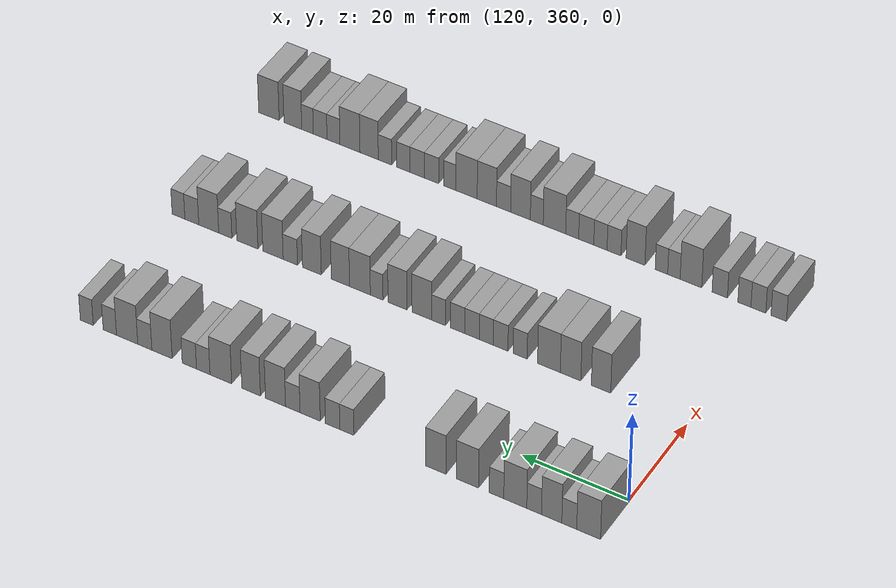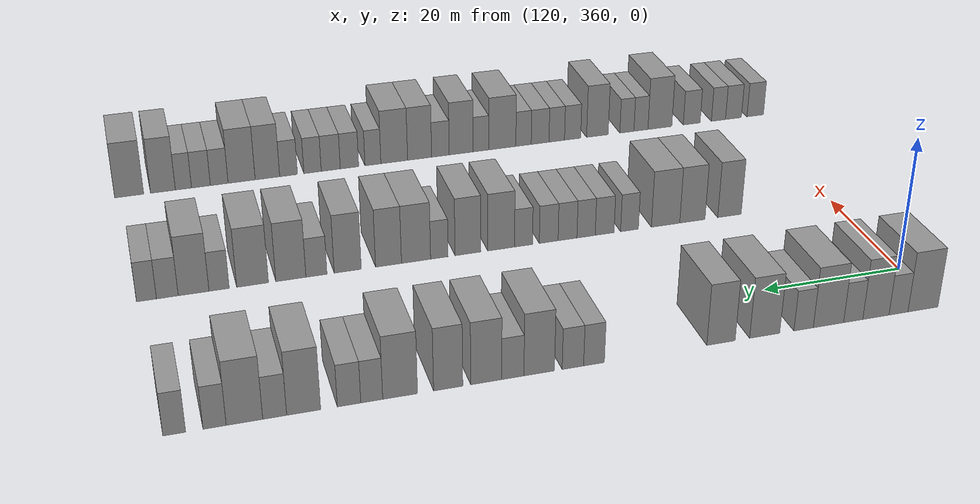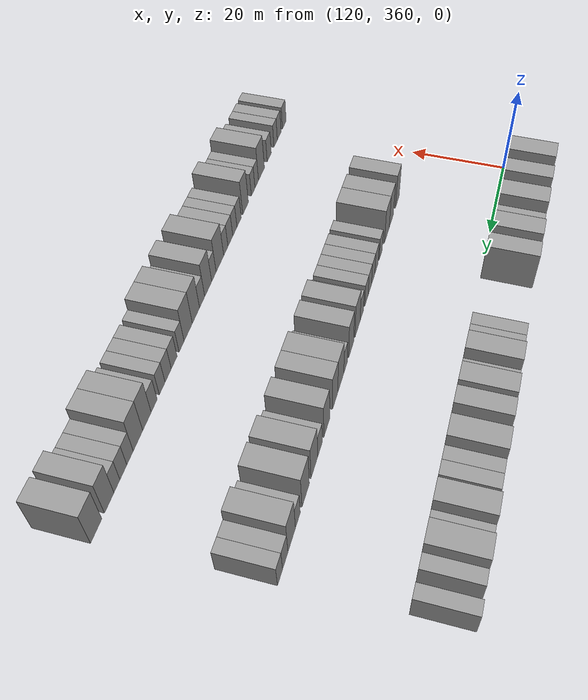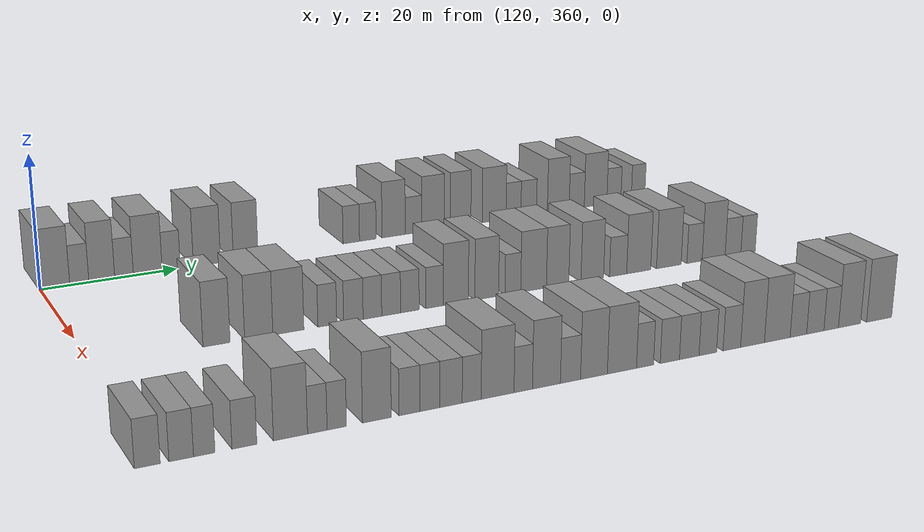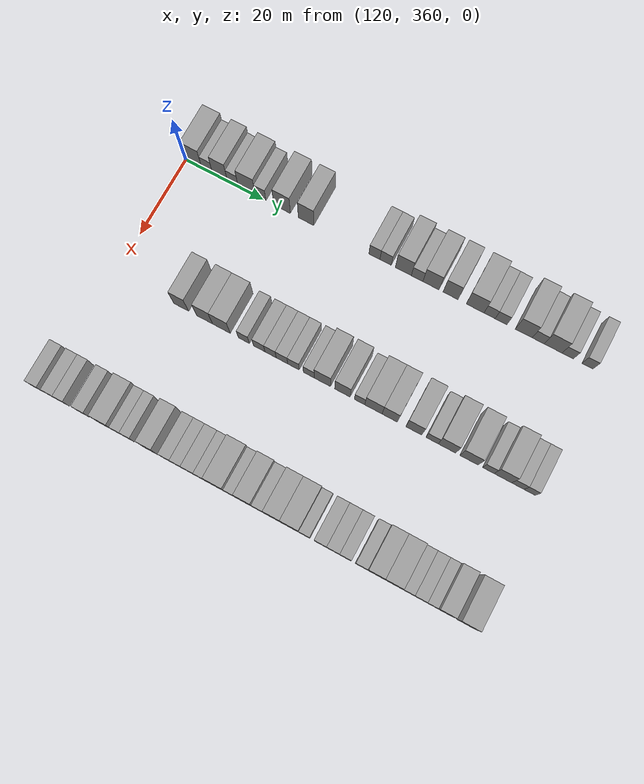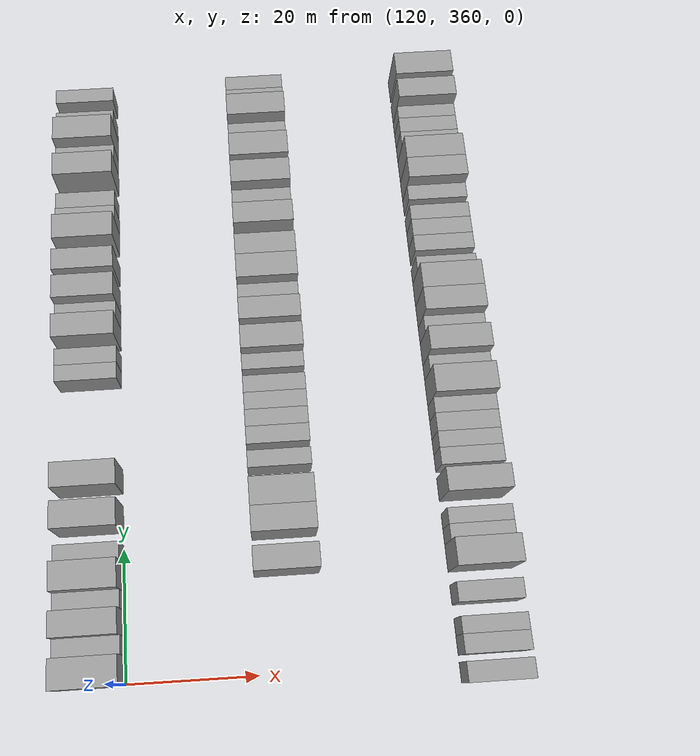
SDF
<sdf version="1.6">
 <world name="default">
  <model name="building_871">
   <static>1</static>
   <pose>115.0000 361.9987 0 0.000000 0.000000 0.000000</pose>
   <link name="link">
    <pose>0 0 4.50 0 0 0</pose>
    <collision name="collision"><geometry><box><size>10.0000 4.3998 9.0000</size></box></geometry></collision>
    <visual name="visual">
     <cast_shadows>0</cast_shadows>
     <geometry><box><size>10.0000 4.3998 9.0000</size></box></geometry>
     <material>
      <script>
       <uri>model://grey_wall/materials/scripts</uri>
       <uri>model://grey_wall/materials/textures</uri>
       <name>vrc/grey_wall</name>
      </script>
     </material>
    </visual>
   </link>
  </model>
  <model name="building_872">
   <static>1</static>
   <pose>115.0000 365.5794 0 0.000000 0.000000 0.000000</pose>
   <link name="link">
    <pose>0 0 3.00 0 0 0</pose>
    <collision name="collision"><geometry><box><size>10.0000 2.7616 6.0000</size></box></geometry></collision>
    <visual name="visual">
     <cast_shadows>0</cast_shadows>
     <geometry><box><size>10.0000 2.7616 6.0000</size></box></geometry>
     <material>
      <script>
       <uri>model://grey_wall/materials/scripts</uri>
       <uri>model://grey_wall/materials/textures</uri>
       <name>vrc/grey_wall</name>
      </script>
     </material>
    </visual>
   </link>
  </model>
  <model name="building_873">
   <static>1</static>
   <pose>115.0000 368.8501 0 0.000000 0.000000 0.000000</pose>
   <link name="link">
    <pose>0 0 4.50 0 0 0</pose>
    <collision name="collision"><geometry><box><size>10.0000 3.7798 9.0000</size></box></geometry></collision>
    <visual name="visual">
     <cast_shadows>0</cast_shadows>
     <geometry><box><size>10.0000 3.7798 9.0000</size></box></geometry>
     <material>
      <script>
       <uri>model://grey_wall/materials/scripts</uri>
       <uri>model://grey_wall/materials/textures</uri>
       <name>vrc/grey_wall</name>
      </script>
     </material>
    </visual>
   </link>
  </model>
  <model name="building_874">
   <static>1</static>
   <pose>115.0000 372.1155 0 0.000000 0.000000 0.000000</pose>
   <link name="link">
    <pose>0 0 3.00 0 0 0</pose>
    <collision name="collision"><geometry><box><size>10.0000 2.7510 6.0000</size></box></geometry></collision>
    <visual name="visual">
     <cast_shadows>0</cast_shadows>
     <geometry><box><size>10.0000 2.7510 6.0000</size></box></geometry>
     <material>
      <script>
       <uri>model://grey_wall/materials/scripts</uri>
       <uri>model://grey_wall/materials/textures</uri>
       <name>vrc/grey_wall</name>
      </script>
     </material>
    </visual>
   </link>
  </model>
  <model name="building_875">
   <static>1</static>
   <pose>115.0000 375.6452 0 0.000000 0.000000 0.000000</pose>
   <link name="link">
    <pose>0 0 4.50 0 0 0</pose>
    <collision name="collision"><geometry><box><size>10.0000 4.3083 9.0000</size></box></geometry></collision>
    <visual name="visual">
     <cast_shadows>0</cast_shadows>
     <geometry><box><size>10.0000 4.3083 9.0000</size></box></geometry>
     <material>
      <script>
       <uri>model://grey_wall/materials/scripts</uri>
       <uri>model://grey_wall/materials/textures</uri>
       <name>vrc/grey_wall</name>
      </script>
     </material>
    </visual>
   </link>
  </model>
  <model name="building_876">
   <static>1</static>
   <pose>115.0000 379.1656 0 0.000000 0.000000 0.000000</pose>
   <link name="link">
    <pose>0 0 3.00 0 0 0</pose>
    <collision name="collision"><geometry><box><size>10.0000 2.7325 6.0000</size></box></geometry></collision>
    <visual name="visual">
     <cast_shadows>0</cast_shadows>
     <geometry><box><size>10.0000 2.7325 6.0000</size></box></geometry>
     <material>
      <script>
       <uri>model://grey_wall/materials/scripts</uri>
       <uri>model://grey_wall/materials/textures</uri>
       <name>vrc/grey_wall</name>
      </script>
     </material>
    </visual>
   </link>
  </model>
  <model name="building_877">
   <static>1</static>
   <pose>115.0000 384.6185 0 0.000000 0.000000 0.000000</pose>
   <link name="link">
    <pose>0 0 4.50 0 0 0</pose>
    <collision name="collision"><geometry><box><size>10.0000 4.1733 9.0000</size></box></geometry></collision>
    <visual name="visual">
     <cast_shadows>0</cast_shadows>
     <geometry><box><size>10.0000 4.1733 9.0000</size></box></geometry>
     <material>
      <script>
       <uri>model://grey_wall/materials/scripts</uri>
       <uri>model://grey_wall/materials/textures</uri>
       <name>vrc/grey_wall</name>
      </script>
     </material>
    </visual>
   </link>
  </model>
  <model name="building_878">
   <static>1</static>
   <pose>115.0000 390.6435 0 0.000000 0.000000 0.000000</pose>
   <link name="link">
    <pose>0 0 4.50 0 0 0</pose>
    <collision name="collision"><geometry><box><size>10.0000 3.8768 9.0000</size></box></geometry></collision>
    <visual name="visual">
     <cast_shadows>0</cast_shadows>
     <geometry><box><size>10.0000 3.8768 9.0000</size></box></geometry>
     <material>
      <script>
       <uri>model://grey_wall/materials/scripts</uri>
       <uri>model://grey_wall/materials/textures</uri>
       <name>vrc/grey_wall</name>
      </script>
     </material>
    </visual>
   </link>
  </model>
  <model name="building_879">
   <static>1</static>
   <pose>115.0000 407.6652 0 0.000000 0.000000 0.000000</pose>
   <link name="link">
    <pose>0 0 3.00 0 0 0</pose>
    <collision name="collision"><geometry><box><size>10.0000 2.7222 6.0000</size></box></geometry></collision>
    <visual name="visual">
     <cast_shadows>0</cast_shadows>
     <geometry><box><size>10.0000 2.7222 6.0000</size></box></geometry>
     <material>
      <script>
       <uri>model://grey_wall/materials/scripts</uri>
       <uri>model://grey_wall/materials/textures</uri>
       <name>vrc/grey_wall</name>
      </script>
     </material>
    </visual>
   </link>
  </model>
  <model name="building_880">
   <static>1</static>
   <pose>115.0000 410.4216 0 0.000000 0.000000 0.000000</pose>
   <link name="link">
    <pose>0 0 3.00 0 0 0</pose>
    <collision name="collision"><geometry><box><size>10.0000 2.7905 6.0000</size></box></geometry></collision>
    <visual name="visual">
     <cast_shadows>0</cast_shadows>
     <geometry><box><size>10.0000 2.7905 6.0000</size></box></geometry>
     <material>
      <script>
       <uri>model://grey_wall/materials/scripts</uri>
       <uri>model://grey_wall/materials/textures</uri>
       <name>vrc/grey_wall</name>
      </script>
     </material>
    </visual>
   </link>
  </model>
  <model name="building_881">
   <static>1</static>
   <pose>115.0000 414.7831 0 0.000000 0.000000 0.000000</pose>
   <link name="link">
    <pose>0 0 4.50 0 0 0</pose>
    <collision name="collision"><geometry><box><size>10.0000 3.9324 9.0000</size></box></geometry></collision>
    <visual name="visual">
     <cast_shadows>0</cast_shadows>
     <geometry><box><size>10.0000 3.9324 9.0000</size></box></geometry>
     <material>
      <script>
       <uri>model://grey_wall/materials/scripts</uri>
       <uri>model://grey_wall/materials/textures</uri>
       <name>vrc/grey_wall</name>
      </script>
     </material>
    </visual>
   </link>
  </model>
  <model name="building_882">
   <static>1</static>
   <pose>115.0000 418.1613 0 0.000000 0.000000 0.000000</pose>
   <link name="link">
    <pose>0 0 3.00 0 0 0</pose>
    <collision name="collision"><geometry><box><size>10.0000 2.8240 6.0000</size></box></geometry></collision>
    <visual name="visual">
     <cast_shadows>0</cast_shadows>
     <geometry><box><size>10.0000 2.8240 6.0000</size></box></geometry>
     <material>
      <script>
       <uri>model://grey_wall/materials/scripts</uri>
       <uri>model://grey_wall/materials/textures</uri>
       <name>vrc/grey_wall</name>
      </script>
     </material>
    </visual>
   </link>
  </model>
  <model name="building_883">
   <static>1</static>
   <pose>115.0000 421.5358 0 0.000000 0.000000 0.000000</pose>
   <link name="link">
    <pose>0 0 4.50 0 0 0</pose>
    <collision name="collision"><geometry><box><size>10.0000 3.9251 9.0000</size></box></geometry></collision>
    <visual name="visual">
     <cast_shadows>0</cast_shadows>
     <geometry><box><size>10.0000 3.9251 9.0000</size></box></geometry>
     <material>
      <script>
       <uri>model://grey_wall/materials/scripts</uri>
       <uri>model://grey_wall/materials/textures</uri>
       <name>vrc/grey_wall</name>
      </script>
     </material>
    </visual>
   </link>
  </model>
  <model name="building_884">
   <static>1</static>
   <pose>115.0000 426.3222 0 0.000000 0.000000 0.000000</pose>
   <link name="link">
    <pose>0 0 4.50 0 0 0</pose>
    <collision name="collision"><geometry><box><size>10.0000 3.6477 9.0000</size></box></geometry></collision>
    <visual name="visual">
     <cast_shadows>0</cast_shadows>
     <geometry><box><size>10.0000 3.6477 9.0000</size></box></geometry>
     <material>
      <script>
       <uri>model://grey_wall/materials/scripts</uri>
       <uri>model://grey_wall/materials/textures</uri>
       <name>vrc/grey_wall</name>
      </script>
     </material>
    </visual>
   </link>
  </model>
  <model name="building_885">
   <static>1</static>
   <pose>115.0000 432.2848 0 0.000000 0.000000 0.000000</pose>
   <link name="link">
    <pose>0 0 4.50 0 0 0</pose>
    <collision name="collision"><geometry><box><size>10.0000 4.2775 9.0000</size></box></geometry></collision>
    <visual name="visual">
     <cast_shadows>0</cast_shadows>
     <geometry><box><size>10.0000 4.2775 9.0000</size></box></geometry>
     <material>
      <script>
       <uri>model://grey_wall/materials/scripts</uri>
       <uri>model://grey_wall/materials/textures</uri>
       <name>vrc/grey_wall</name>
      </script>
     </material>
    </visual>
   </link>
  </model>
  <model name="building_886">
   <static>1</static>
   <pose>115.0000 435.7615 0 0.000000 0.000000 0.000000</pose>
   <link name="link">
    <pose>0 0 3.00 0 0 0</pose>
    <collision name="collision"><geometry><box><size>10.0000 2.6759 6.0000</size></box></geometry></collision>
    <visual name="visual">
     <cast_shadows>0</cast_shadows>
     <geometry><box><size>10.0000 2.6759 6.0000</size></box></geometry>
     <material>
      <script>
       <uri>model://grey_wall/materials/scripts</uri>
       <uri>model://grey_wall/materials/textures</uri>
       <name>vrc/grey_wall</name>
      </script>
     </material>
    </visual>
   </link>
  </model>
  <model name="building_887">
   <static>1</static>
   <pose>115.0000 438.5187 0 0.000000 0.000000 0.000000</pose>
   <link name="link">
    <pose>0 0 3.00 0 0 0</pose>
    <collision name="collision"><geometry><box><size>10.0000 2.8385 6.0000</size></box></geometry></collision>
    <visual name="visual">
     <cast_shadows>0</cast_shadows>
     <geometry><box><size>10.0000 2.8385 6.0000</size></box></geometry>
     <material>
      <script>
       <uri>model://grey_wall/materials/scripts</uri>
       <uri>model://grey_wall/materials/textures</uri>
       <name>vrc/grey_wall</name>
      </script>
     </material>
    </visual>
   </link>
  </model>
  <model name="building_888">
   <static>1</static>
   <pose>115.0000 443.9630 0 0.000000 0.000000 0.000000</pose>
   <link name="link">
    <pose>0 0 4.50 0 0 0</pose>
    <collision name="collision"><geometry><box><size>10.0000 4.0502 9.0000</size></box></geometry></collision>
    <visual name="visual">
     <cast_shadows>0</cast_shadows>
     <geometry><box><size>10.0000 4.0502 9.0000</size></box></geometry>
     <material>
      <script>
       <uri>model://grey_wall/materials/scripts</uri>
       <uri>model://grey_wall/materials/textures</uri>
       <name>vrc/grey_wall</name>
      </script>
     </material>
    </visual>
   </link>
  </model>
  <model name="building_889">
   <static>1</static>
   <pose>115.0000 447.4037 0 0.000000 0.000000 0.000000</pose>
   <link name="link">
    <pose>0 0 3.00 0 0 0</pose>
    <collision name="collision"><geometry><box><size>10.0000 2.8311 6.0000</size></box></geometry></collision>
    <visual name="visual">
     <cast_shadows>0</cast_shadows>
     <geometry><box><size>10.0000 2.8311 6.0000</size></box></geometry>
     <material>
      <script>
       <uri>model://grey_wall/materials/scripts</uri>
       <uri>model://grey_wall/materials/textures</uri>
       <name>vrc/grey_wall</name>
      </script>
     </material>
    </visual>
   </link>
  </model>
  <model name="building_890">
   <static>1</static>
   <pose>115.0000 450.9556 0 0.000000 0.000000 0.000000</pose>
   <link name="link">
    <pose>0 0 4.50 0 0 0</pose>
    <collision name="collision"><geometry><box><size>10.0000 4.2727 9.0000</size></box></geometry></collision>
    <visual name="visual">
     <cast_shadows>0</cast_shadows>
     <geometry><box><size>10.0000 4.2727 9.0000</size></box></geometry>
     <material>
      <script>
       <uri>model://grey_wall/materials/scripts</uri>
       <uri>model://grey_wall/materials/textures</uri>
       <name>vrc/grey_wall</name>
      </script>
     </material>
    </visual>
   </link>
  </model>
  <model name="building_891">
   <static>1</static>
   <pose>115.0000 454.4366 0 0.000000 0.000000 0.000000</pose>
   <link name="link">
    <pose>0 0 3.00 0 0 0</pose>
    <collision name="collision"><geometry><box><size>10.0000 2.6893 6.0000</size></box></geometry></collision>
    <visual name="visual">
     <cast_shadows>0</cast_shadows>
     <geometry><box><size>10.0000 2.6893 6.0000</size></box></geometry>
     <material>
      <script>
       <uri>model://grey_wall/materials/scripts</uri>
       <uri>model://grey_wall/materials/textures</uri>
       <name>vrc/grey_wall</name>
      </script>
     </material>
    </visual>
   </link>
  </model>
  <model name="building_892">
   <static>1</static>
   <pose>115.0000 459.0893 0 0.000000 0.000000 0.000000</pose>
   <link name="link">
    <pose>0 0 3.00 0 0 0</pose>
    <collision name="collision"><geometry><box><size>10.0000 2.6162 6.0000</size></box></geometry></collision>
    <visual name="visual">
     <cast_shadows>0</cast_shadows>
     <geometry><box><size>10.0000 2.6162 6.0000</size></box></geometry>
     <material>
      <script>
       <uri>model://grey_wall/materials/scripts</uri>
       <uri>model://grey_wall/materials/textures</uri>
       <name>vrc/grey_wall</name>
      </script>
     </material>
    </visual>
   </link>
  </model>
  <model name="building_1096">
   <static>1</static>
   <pose>145.0000 376.3088 0 0.000000 0.000000 0.000000</pose>
   <link name="link">
    <pose>0 0 4.50 0 0 0</pose>
    <collision name="collision"><geometry><box><size>10.0000 3.6912 9.0000</size></box></geometry></collision>
    <visual name="visual">
     <cast_shadows>0</cast_shadows>
     <geometry><box><size>10.0000 3.6912 9.0000</size></box></geometry>
     <material>
      <script>
       <uri>model://grey_wall/materials/scripts</uri>
       <uri>model://grey_wall/materials/textures</uri>
       <name>vrc/grey_wall</name>
      </script>
     </material>
    </visual>
   </link>
  </model>
  <model name="building_1097">
   <static>1</static>
   <pose>145.0000 382.1188 0 0.000000 0.000000 0.000000</pose>
   <link name="link">
    <pose>0 0 4.50 0 0 0</pose>
    <collision name="collision"><geometry><box><size>10.0000 3.9289 9.0000</size></box></geometry></collision>
    <visual name="visual">
     <cast_shadows>0</cast_shadows>
     <geometry><box><size>10.0000 3.9289 9.0000</size></box></geometry>
     <material>
      <script>
       <uri>model://grey_wall/materials/scripts</uri>
       <uri>model://grey_wall/materials/textures</uri>
       <name>vrc/grey_wall</name>
      </script>
     </material>
    </visual>
   </link>
  </model>
  <model name="building_1098">
   <static>1</static>
   <pose>145.0000 386.2729 0 0.000000 0.000000 0.000000</pose>
   <link name="link">
    <pose>0 0 4.50 0 0 0</pose>
    <collision name="collision"><geometry><box><size>10.0000 4.3792 9.0000</size></box></geometry></collision>
    <visual name="visual">
     <cast_shadows>0</cast_shadows>
     <geometry><box><size>10.0000 4.3792 9.0000</size></box></geometry>
     <material>
      <script>
       <uri>model://grey_wall/materials/scripts</uri>
       <uri>model://grey_wall/materials/textures</uri>
       <name>vrc/grey_wall</name>
      </script>
     </material>
    </visual>
   </link>
  </model>
  <model name="building_1099">
   <static>1</static>
   <pose>145.0000 391.8205 0 0.000000 0.000000 0.000000</pose>
   <link name="link">
    <pose>0 0 3.00 0 0 0</pose>
    <collision name="collision"><geometry><box><size>10.0000 2.7160 6.0000</size></box></geometry></collision>
    <visual name="visual">
     <cast_shadows>0</cast_shadows>
     <geometry><box><size>10.0000 2.7160 6.0000</size></box></geometry>
     <material>
      <script>
       <uri>model://grey_wall/materials/scripts</uri>
       <uri>model://grey_wall/materials/textures</uri>
       <name>vrc/grey_wall</name>
      </script>
     </material>
    </visual>
   </link>
  </model>
  <model name="building_1100">
   <static>1</static>
   <pose>145.0000 395.5969 0 0.000000 0.000000 0.000000</pose>
   <link name="link">
    <pose>0 0 3.00 0 0 0</pose>
    <collision name="collision"><geometry><box><size>10.0000 2.8369 6.0000</size></box></geometry></collision>
    <visual name="visual">
     <cast_shadows>0</cast_shadows>
     <geometry><box><size>10.0000 2.8369 6.0000</size></box></geometry>
     <material>
      <script>
       <uri>model://grey_wall/materials/scripts</uri>
       <uri>model://grey_wall/materials/textures</uri>
       <name>vrc/grey_wall</name>
      </script>
     </material>
    </visual>
   </link>
  </model>
  <model name="building_1101">
   <static>1</static>
   <pose>145.0000 398.3902 0 0.000000 0.000000 0.000000</pose>
   <link name="link">
    <pose>0 0 3.00 0 0 0</pose>
    <collision name="collision"><geometry><box><size>10.0000 2.7495 6.0000</size></box></geometry></collision>
    <visual name="visual">
     <cast_shadows>0</cast_shadows>
     <geometry><box><size>10.0000 2.7495 6.0000</size></box></geometry>
     <material>
      <script>
       <uri>model://grey_wall/materials/scripts</uri>
       <uri>model://grey_wall/materials/textures</uri>
       <name>vrc/grey_wall</name>
      </script>
     </material>
    </visual>
   </link>
  </model>
  <model name="building_1102">
   <static>1</static>
   <pose>145.0000 401.1715 0 0.000000 0.000000 0.000000</pose>
   <link name="link">
    <pose>0 0 3.00 0 0 0</pose>
    <collision name="collision"><geometry><box><size>10.0000 2.8131 6.0000</size></box></geometry></collision>
    <visual name="visual">
     <cast_shadows>0</cast_shadows>
     <geometry><box><size>10.0000 2.8131 6.0000</size></box></geometry>
     <material>
      <script>
       <uri>model://grey_wall/materials/scripts</uri>
       <uri>model://grey_wall/materials/textures</uri>
       <name>vrc/grey_wall</name>
      </script>
     </material>
    </visual>
   </link>
  </model>
  <model name="building_1103">
   <static>1</static>
   <pose>145.0000 403.9708 0 0.000000 0.000000 0.000000</pose>
   <link name="link">
    <pose>0 0 3.00 0 0 0</pose>
    <collision name="collision"><geometry><box><size>10.0000 2.7855 6.0000</size></box></geometry></collision>
    <visual name="visual">
     <cast_shadows>0</cast_shadows>
     <geometry><box><size>10.0000 2.7855 6.0000</size></box></geometry>
     <material>
      <script>
       <uri>model://grey_wall/materials/scripts</uri>
       <uri>model://grey_wall/materials/textures</uri>
       <name>vrc/grey_wall</name>
      </script>
     </material>
    </visual>
   </link>
  </model>
  <model name="building_1104">
   <static>1</static>
   <pose>145.0000 407.6880 0 0.000000 0.000000 0.000000</pose>
   <link name="link">
    <pose>0 0 3.00 0 0 0</pose>
    <collision name="collision"><geometry><box><size>10.0000 2.6490 6.0000</size></box></geometry></collision>
    <visual name="visual">
     <cast_shadows>0</cast_shadows>
     <geometry><box><size>10.0000 2.6490 6.0000</size></box></geometry>
     <material>
      <script>
       <uri>model://grey_wall/materials/scripts</uri>
       <uri>model://grey_wall/materials/textures</uri>
       <name>vrc/grey_wall</name>
      </script>
     </material>
    </visual>
   </link>
  </model>
  <model name="building_1105">
   <static>1</static>
   <pose>145.0000 410.9677 0 0.000000 0.000000 0.000000</pose>
   <link name="link">
    <pose>0 0 4.50 0 0 0</pose>
    <collision name="collision"><geometry><box><size>10.0000 3.9104 9.0000</size></box></geometry></collision>
    <visual name="visual">
     <cast_shadows>0</cast_shadows>
     <geometry><box><size>10.0000 3.9104 9.0000</size></box></geometry>
     <material>
      <script>
       <uri>model://grey_wall/materials/scripts</uri>
       <uri>model://grey_wall/materials/textures</uri>
       <name>vrc/grey_wall</name>
      </script>
     </material>
    </visual>
   </link>
  </model>
  <model name="building_1106">
   <static>1</static>
   <pose>145.0000 415.7907 0 0.000000 0.000000 0.000000</pose>
   <link name="link">
    <pose>0 0 4.50 0 0 0</pose>
    <collision name="collision"><geometry><box><size>10.0000 3.7355 9.0000</size></box></geometry></collision>
    <visual name="visual">
     <cast_shadows>0</cast_shadows>
     <geometry><box><size>10.0000 3.7355 9.0000</size></box></geometry>
     <material>
      <script>
       <uri>model://grey_wall/materials/scripts</uri>
       <uri>model://grey_wall/materials/textures</uri>
       <name>vrc/grey_wall</name>
      </script>
     </material>
    </visual>
   </link>
  </model>
  <model name="building_1107">
   <static>1</static>
   <pose>145.0000 419.9105 0 0.000000 0.000000 0.000000</pose>
   <link name="link">
    <pose>0 0 3.00 0 0 0</pose>
    <collision name="collision"><geometry><box><size>10.0000 2.5041 6.0000</size></box></geometry></collision>
    <visual name="visual">
     <cast_shadows>0</cast_shadows>
     <geometry><box><size>10.0000 2.5041 6.0000</size></box></geometry>
     <material>
      <script>
       <uri>model://grey_wall/materials/scripts</uri>
       <uri>model://grey_wall/materials/textures</uri>
       <name>vrc/grey_wall</name>
      </script>
     </material>
    </visual>
   </link>
  </model>
  <model name="building_1108">
   <static>1</static>
   <pose>145.0000 423.2298 0 0.000000 0.000000 0.000000</pose>
   <link name="link">
    <pose>0 0 4.50 0 0 0</pose>
    <collision name="collision"><geometry><box><size>10.0000 4.1345 9.0000</size></box></geometry></collision>
    <visual name="visual">
     <cast_shadows>0</cast_shadows>
     <geometry><box><size>10.0000 4.1345 9.0000</size></box></geometry>
     <material>
      <script>
       <uri>model://grey_wall/materials/scripts</uri>
       <uri>model://grey_wall/materials/textures</uri>
       <name>vrc/grey_wall</name>
      </script>
     </material>
    </visual>
   </link>
  </model>
  <model name="building_1109">
   <static>1</static>
   <pose>145.0000 427.1219 0 0.000000 0.000000 0.000000</pose>
   <link name="link">
    <pose>0 0 4.50 0 0 0</pose>
    <collision name="collision"><geometry><box><size>10.0000 3.6497 9.0000</size></box></geometry></collision>
    <visual name="visual">
     <cast_shadows>0</cast_shadows>
     <geometry><box><size>10.0000 3.6497 9.0000</size></box></geometry>
     <material>
      <script>
       <uri>model://grey_wall/materials/scripts</uri>
       <uri>model://grey_wall/materials/textures</uri>
       <name>vrc/grey_wall</name>
      </script>
     </material>
    </visual>
   </link>
  </model>
  <model name="building_1110">
   <static>1</static>
   <pose>145.0000 432.8287 0 0.000000 0.000000 0.000000</pose>
   <link name="link">
    <pose>0 0 4.50 0 0 0</pose>
    <collision name="collision"><geometry><box><size>10.0000 3.7640 9.0000</size></box></geometry></collision>
    <visual name="visual">
     <cast_shadows>0</cast_shadows>
     <geometry><box><size>10.0000 3.7640 9.0000</size></box></geometry>
     <material>
      <script>
       <uri>model://grey_wall/materials/scripts</uri>
       <uri>model://grey_wall/materials/textures</uri>
       <name>vrc/grey_wall</name>
      </script>
     </material>
    </visual>
   </link>
  </model>
  <model name="building_1111">
   <static>1</static>
   <pose>145.0000 437.1565 0 0.000000 0.000000 0.000000</pose>
   <link name="link">
    <pose>0 0 3.00 0 0 0</pose>
    <collision name="collision"><geometry><box><size>10.0000 2.8915 6.0000</size></box></geometry></collision>
    <visual name="visual">
     <cast_shadows>0</cast_shadows>
     <geometry><box><size>10.0000 2.8915 6.0000</size></box></geometry>
     <material>
      <script>
       <uri>model://grey_wall/materials/scripts</uri>
       <uri>model://grey_wall/materials/textures</uri>
       <name>vrc/grey_wall</name>
      </script>
     </material>
    </visual>
   </link>
  </model>
  <model name="building_1112">
   <static>1</static>
   <pose>145.0000 440.6560 0 0.000000 0.000000 0.000000</pose>
   <link name="link">
    <pose>0 0 4.50 0 0 0</pose>
    <collision name="collision"><geometry><box><size>10.0000 4.1076 9.0000</size></box></geometry></collision>
    <visual name="visual">
     <cast_shadows>0</cast_shadows>
     <geometry><box><size>10.0000 4.1076 9.0000</size></box></geometry>
     <material>
      <script>
       <uri>model://grey_wall/materials/scripts</uri>
       <uri>model://grey_wall/materials/textures</uri>
       <name>vrc/grey_wall</name>
      </script>
     </material>
    </visual>
   </link>
  </model>
  <model name="building_1113">
   <static>1</static>
   <pose>145.0000 445.8509 0 0.000000 0.000000 0.000000</pose>
   <link name="link">
    <pose>0 0 4.50 0 0 0</pose>
    <collision name="collision"><geometry><box><size>10.0000 4.2822 9.0000</size></box></geometry></collision>
    <visual name="visual">
     <cast_shadows>0</cast_shadows>
     <geometry><box><size>10.0000 4.2822 9.0000</size></box></geometry>
     <material>
      <script>
       <uri>model://grey_wall/materials/scripts</uri>
       <uri>model://grey_wall/materials/textures</uri>
       <name>vrc/grey_wall</name>
      </script>
     </material>
    </visual>
   </link>
  </model>
  <model name="building_1114">
   <static>1</static>
   <pose>145.0000 450.3405 0 0.000000 0.000000 0.000000</pose>
   <link name="link">
    <pose>0 0 3.00 0 0 0</pose>
    <collision name="collision"><geometry><box><size>10.0000 2.6971 6.0000</size></box></geometry></collision>
    <visual name="visual">
     <cast_shadows>0</cast_shadows>
     <geometry><box><size>10.0000 2.6971 6.0000</size></box></geometry>
     <material>
      <script>
       <uri>model://grey_wall/materials/scripts</uri>
       <uri>model://grey_wall/materials/textures</uri>
       <name>vrc/grey_wall</name>
      </script>
     </material>
    </visual>
   </link>
  </model>
  <model name="building_1115">
   <static>1</static>
   <pose>145.0000 453.7285 0 0.000000 0.000000 0.000000</pose>
   <link name="link">
    <pose>0 0 4.50 0 0 0</pose>
    <collision name="collision"><geometry><box><size>10.0000 4.0788 9.0000</size></box></geometry></collision>
    <visual name="visual">
     <cast_shadows>0</cast_shadows>
     <geometry><box><size>10.0000 4.0788 9.0000</size></box></geometry>
     <material>
      <script>
       <uri>model://grey_wall/materials/scripts</uri>
       <uri>model://grey_wall/materials/textures</uri>
       <name>vrc/grey_wall</name>
      </script>
     </material>
    </visual>
   </link>
  </model>
  <model name="building_1116">
   <static>1</static>
   <pose>145.0000 457.1945 0 0.000000 0.000000 0.000000</pose>
   <link name="link">
    <pose>0 0 3.00 0 0 0</pose>
    <collision name="collision"><geometry><box><size>10.0000 2.8532 6.0000</size></box></geometry></collision>
    <visual name="visual">
     <cast_shadows>0</cast_shadows>
     <geometry><box><size>10.0000 2.8532 6.0000</size></box></geometry>
     <material>
      <script>
       <uri>model://grey_wall/materials/scripts</uri>
       <uri>model://grey_wall/materials/textures</uri>
       <name>vrc/grey_wall</name>
      </script>
     </material>
    </visual>
   </link>
  </model>
  <model name="building_1117">
   <static>1</static>
   <pose>145.0000 459.9251 0 0.000000 0.000000 0.000000</pose>
   <link name="link">
    <pose>0 0 3.00 0 0 0</pose>
    <collision name="collision"><geometry><box><size>10.0000 2.6081 6.0000</size></box></geometry></collision>
    <visual name="visual">
     <cast_shadows>0</cast_shadows>
     <geometry><box><size>10.0000 2.6081 6.0000</size></box></geometry>
     <material>
      <script>
       <uri>model://grey_wall/materials/scripts</uri>
       <uri>model://grey_wall/materials/textures</uri>
       <name>vrc/grey_wall</name>
      </script>
     </material>
    </visual>
   </link>
  </model>
  <model name="building_1318">
   <static>1</static>
   <pose>175.0000 358.5231 0 0.000000 0.000000 0.000000</pose>
   <link name="link">
    <pose>0 0 3.00 0 0 0</pose>
    <collision name="collision"><geometry><box><size>10.0000 2.9478 6.0000</size></box></geometry></collision>
    <visual name="visual">
     <cast_shadows>0</cast_shadows>
     <geometry><box><size>10.0000 2.9478 6.0000</size></box></geometry>
     <material>
      <script>
       <uri>model://grey_wall/materials/scripts</uri>
       <uri>model://grey_wall/materials/textures</uri>
       <name>vrc/grey_wall</name>
      </script>
     </material>
    </visual>
   </link>
  </model>
  <model name="building_1319">
   <static>1</static>
   <pose>175.0000 362.4151 0 0.000000 0.000000 0.000000</pose>
   <link name="link">
    <pose>0 0 3.00 0 0 0</pose>
    <collision name="collision"><geometry><box><size>10.0000 2.8361 6.0000</size></box></geometry></collision>
    <visual name="visual">
     <cast_shadows>0</cast_shadows>
     <geometry><box><size>10.0000 2.8361 6.0000</size></box></geometry>
     <material>
      <script>
       <uri>model://grey_wall/materials/scripts</uri>
       <uri>model://grey_wall/materials/textures</uri>
       <name>vrc/grey_wall</name>
      </script>
     </material>
    </visual>
   </link>
  </model>
  <model name="building_1320">
   <static>1</static>
   <pose>175.0000 365.0860 0 0.000000 0.000000 0.000000</pose>
   <link name="link">
    <pose>0 0 3.00 0 0 0</pose>
    <collision name="collision"><geometry><box><size>10.0000 2.5057 6.0000</size></box></geometry></collision>
    <visual name="visual">
     <cast_shadows>0</cast_shadows>
     <geometry><box><size>10.0000 2.5057 6.0000</size></box></geometry>
     <material>
      <script>
       <uri>model://grey_wall/materials/scripts</uri>
       <uri>model://grey_wall/materials/textures</uri>
       <name>vrc/grey_wall</name>
      </script>
     </material>
    </visual>
   </link>
  </model>
  <model name="building_1321">
   <static>1</static>
   <pose>175.0000 369.8204 0 0.000000 0.000000 0.000000</pose>
   <link name="link">
    <pose>0 0 3.00 0 0 0</pose>
    <collision name="collision"><geometry><box><size>10.0000 2.9632 6.0000</size></box></geometry></collision>
    <visual name="visual">
     <cast_shadows>0</cast_shadows>
     <geometry><box><size>10.0000 2.9632 6.0000</size></box></geometry>
     <material>
      <script>
       <uri>model://grey_wall/materials/scripts</uri>
       <uri>model://grey_wall/materials/textures</uri>
       <name>vrc/grey_wall</name>
      </script>
     </material>
    </visual>
   </link>
  </model>
  <model name="building_1322">
   <static>1</static>
   <pose>175.0000 375.3840 0 0.000000 0.000000 0.000000</pose>
   <link name="link">
    <pose>0 0 4.50 0 0 0</pose>
    <collision name="collision"><geometry><box><size>10.0000 4.1639 9.0000</size></box></geometry></collision>
    <visual name="visual">
     <cast_shadows>0</cast_shadows>
     <geometry><box><size>10.0000 4.1639 9.0000</size></box></geometry>
     <material>
      <script>
       <uri>model://grey_wall/materials/scripts</uri>
       <uri>model://grey_wall/materials/textures</uri>
       <name>vrc/grey_wall</name>
      </script>
     </material>
    </visual>
   </link>
  </model>
  <model name="building_1323">
   <static>1</static>
   <pose>175.0000 378.6756 0 0.000000 0.000000 0.000000</pose>
   <link name="link">
    <pose>0 0 3.00 0 0 0</pose>
    <collision name="collision"><geometry><box><size>10.0000 2.4192 6.0000</size></box></geometry></collision>
    <visual name="visual">
     <cast_shadows>0</cast_shadows>
     <geometry><box><size>10.0000 2.4192 6.0000</size></box></geometry>
     <material>
      <script>
       <uri>model://grey_wall/materials/scripts</uri>
       <uri>model://grey_wall/materials/textures</uri>
       <name>vrc/grey_wall</name>
      </script>
     </material>
    </visual>
   </link>
  </model>
  <model name="building_1324">
   <static>1</static>
   <pose>175.0000 381.0992 0 0.000000 0.000000 0.000000</pose>
   <link name="link">
    <pose>0 0 3.00 0 0 0</pose>
    <collision name="collision"><geometry><box><size>10.0000 2.4280 6.0000</size></box></geometry></collision>
    <visual name="visual">
     <cast_shadows>0</cast_shadows>
     <geometry><box><size>10.0000 2.4280 6.0000</size></box></geometry>
     <material>
      <script>
       <uri>model://grey_wall/materials/scripts</uri>
       <uri>model://grey_wall/materials/textures</uri>
       <name>vrc/grey_wall</name>
      </script>
     </material>
    </visual>
   </link>
  </model>
  <model name="building_1325">
   <static>1</static>
   <pose>175.0000 386.1541 0 0.000000 0.000000 0.000000</pose>
   <link name="link">
    <pose>0 0 4.50 0 0 0</pose>
    <collision name="collision"><geometry><box><size>10.0000 3.6818 9.0000</size></box></geometry></collision>
    <visual name="visual">
     <cast_shadows>0</cast_shadows>
     <geometry><box><size>10.0000 3.6818 9.0000</size></box></geometry>
     <material>
      <script>
       <uri>model://grey_wall/materials/scripts</uri>
       <uri>model://grey_wall/materials/textures</uri>
       <name>vrc/grey_wall</name>
      </script>
     </material>
    </visual>
   </link>
  </model>
  <model name="building_1326">
   <static>1</static>
   <pose>175.0000 390.3589 0 0.000000 0.000000 0.000000</pose>
   <link name="link">
    <pose>0 0 3.00 0 0 0</pose>
    <collision name="collision"><geometry><box><size>10.0000 2.7279 6.0000</size></box></geometry></collision>
    <visual name="visual">
     <cast_shadows>0</cast_shadows>
     <geometry><box><size>10.0000 2.7279 6.0000</size></box></geometry>
     <material>
      <script>
       <uri>model://grey_wall/materials/scripts</uri>
       <uri>model://grey_wall/materials/textures</uri>
       <name>vrc/grey_wall</name>
      </script>
     </material>
    </visual>
   </link>
  </model>
  <model name="building_1327">
   <static>1</static>
   <pose>175.0000 393.0263 0 0.000000 0.000000 0.000000</pose>
   <link name="link">
    <pose>0 0 3.00 0 0 0</pose>
    <collision name="collision"><geometry><box><size>10.0000 2.6068 6.0000</size></box></geometry></collision>
    <visual name="visual">
     <cast_shadows>0</cast_shadows>
     <geometry><box><size>10.0000 2.6068 6.0000</size></box></geometry>
     <material>
      <script>
       <uri>model://grey_wall/materials/scripts</uri>
       <uri>model://grey_wall/materials/textures</uri>
       <name>vrc/grey_wall</name>
      </script>
     </material>
    </visual>
   </link>
  </model>
  <model name="building_1328">
   <static>1</static>
   <pose>175.0000 395.8180 0 0.000000 0.000000 0.000000</pose>
   <link name="link">
    <pose>0 0 3.00 0 0 0</pose>
    <collision name="collision"><geometry><box><size>10.0000 2.9766 6.0000</size></box></geometry></collision>
    <visual name="visual">
     <cast_shadows>0</cast_shadows>
     <geometry><box><size>10.0000 2.9766 6.0000</size></box></geometry>
     <material>
      <script>
       <uri>model://grey_wall/materials/scripts</uri>
       <uri>model://grey_wall/materials/textures</uri>
       <name>vrc/grey_wall</name>
      </script>
     </material>
    </visual>
   </link>
  </model>
  <model name="building_1329">
   <static>1</static>
   <pose>175.0000 398.5824 0 0.000000 0.000000 0.000000</pose>
   <link name="link">
    <pose>0 0 3.00 0 0 0</pose>
    <collision name="collision"><geometry><box><size>10.0000 2.5521 6.0000</size></box></geometry></collision>
    <visual name="visual">
     <cast_shadows>0</cast_shadows>
     <geometry><box><size>10.0000 2.5521 6.0000</size></box></geometry>
     <material>
      <script>
       <uri>model://grey_wall/materials/scripts</uri>
       <uri>model://grey_wall/materials/textures</uri>
       <name>vrc/grey_wall</name>
      </script>
     </material>
    </visual>
   </link>
  </model>
  <model name="building_1330">
   <static>1</static>
   <pose>175.0000 402.0932 0 0.000000 0.000000 0.000000</pose>
   <link name="link">
    <pose>0 0 4.50 0 0 0</pose>
    <collision name="collision"><geometry><box><size>10.0000 4.4695 9.0000</size></box></geometry></collision>
    <visual name="visual">
     <cast_shadows>0</cast_shadows>
     <geometry><box><size>10.0000 4.4695 9.0000</size></box></geometry>
     <material>
      <script>
       <uri>model://grey_wall/materials/scripts</uri>
       <uri>model://grey_wall/materials/textures</uri>
       <name>vrc/grey_wall</name>
      </script>
     </material>
    </visual>
   </link>
  </model>
  <model name="building_1331">
   <static>1</static>
   <pose>175.0000 405.6017 0 0.000000 0.000000 0.000000</pose>
   <link name="link">
    <pose>0 0 3.00 0 0 0</pose>
    <collision name="collision"><geometry><box><size>10.0000 2.5476 6.0000</size></box></geometry></collision>
    <visual name="visual">
     <cast_shadows>0</cast_shadows>
     <geometry><box><size>10.0000 2.5476 6.0000</size></box></geometry>
     <material>
      <script>
       <uri>model://grey_wall/materials/scripts</uri>
       <uri>model://grey_wall/materials/textures</uri>
       <name>vrc/grey_wall</name>
      </script>
     </material>
    </visual>
   </link>
  </model>
  <model name="building_1332">
   <static>1</static>
   <pose>175.0000 408.8342 0 0.000000 0.000000 0.000000</pose>
   <link name="link">
    <pose>0 0 4.50 0 0 0</pose>
    <collision name="collision"><geometry><box><size>10.0000 3.9174 9.0000</size></box></geometry></collision>
    <visual name="visual">
     <cast_shadows>0</cast_shadows>
     <geometry><box><size>10.0000 3.9174 9.0000</size></box></geometry>
     <material>
      <script>
       <uri>model://grey_wall/materials/scripts</uri>
       <uri>model://grey_wall/materials/textures</uri>
       <name>vrc/grey_wall</name>
      </script>
     </material>
    </visual>
   </link>
  </model>
  <model name="building_1333">
   <static>1</static>
   <pose>175.0000 412.2154 0 0.000000 0.000000 0.000000</pose>
   <link name="link">
    <pose>0 0 3.00 0 0 0</pose>
    <collision name="collision"><geometry><box><size>10.0000 2.8452 6.0000</size></box></geometry></collision>
    <visual name="visual">
     <cast_shadows>0</cast_shadows>
     <geometry><box><size>10.0000 2.8452 6.0000</size></box></geometry>
     <material>
      <script>
       <uri>model://grey_wall/materials/scripts</uri>
       <uri>model://grey_wall/materials/textures</uri>
       <name>vrc/grey_wall</name>
      </script>
     </material>
    </visual>
   </link>
  </model>
  <model name="building_1334">
   <static>1</static>
   <pose>175.0000 415.5689 0 0.000000 0.000000 0.000000</pose>
   <link name="link">
    <pose>0 0 4.50 0 0 0</pose>
    <collision name="collision"><geometry><box><size>10.0000 3.8617 9.0000</size></box></geometry></collision>
    <visual name="visual">
     <cast_shadows>0</cast_shadows>
     <geometry><box><size>10.0000 3.8617 9.0000</size></box></geometry>
     <material>
      <script>
       <uri>model://grey_wall/materials/scripts</uri>
       <uri>model://grey_wall/materials/textures</uri>
       <name>vrc/grey_wall</name>
      </script>
     </material>
    </visual>
   </link>
  </model>
  <model name="building_1335">
   <static>1</static>
   <pose>175.0000 419.6284 0 0.000000 0.000000 0.000000</pose>
   <link name="link">
    <pose>0 0 4.50 0 0 0</pose>
    <collision name="collision"><geometry><box><size>10.0000 4.2573 9.0000</size></box></geometry></collision>
    <visual name="visual">
     <cast_shadows>0</cast_shadows>
     <geometry><box><size>10.0000 4.2573 9.0000</size></box></geometry>
     <material>
      <script>
       <uri>model://grey_wall/materials/scripts</uri>
       <uri>model://grey_wall/materials/textures</uri>
       <name>vrc/grey_wall</name>
      </script>
     </material>
    </visual>
   </link>
  </model>
  <model name="building_1336">
   <static>1</static>
   <pose>175.0000 423.0157 0 0.000000 0.000000 0.000000</pose>
   <link name="link">
    <pose>0 0 3.00 0 0 0</pose>
    <collision name="collision"><geometry><box><size>10.0000 2.5172 6.0000</size></box></geometry></collision>
    <visual name="visual">
     <cast_shadows>0</cast_shadows>
     <geometry><box><size>10.0000 2.5172 6.0000</size></box></geometry>
     <material>
      <script>
       <uri>model://grey_wall/materials/scripts</uri>
       <uri>model://grey_wall/materials/textures</uri>
       <name>vrc/grey_wall</name>
      </script>
     </material>
    </visual>
   </link>
  </model>
  <model name="building_1337">
   <static>1</static>
   <pose>175.0000 426.7167 0 0.000000 0.000000 0.000000</pose>
   <link name="link">
    <pose>0 0 3.00 0 0 0</pose>
    <collision name="collision"><geometry><box><size>10.0000 2.8850 6.0000</size></box></geometry></collision>
    <visual name="visual">
     <cast_shadows>0</cast_shadows>
     <geometry><box><size>10.0000 2.8850 6.0000</size></box></geometry>
     <material>
      <script>
       <uri>model://grey_wall/materials/scripts</uri>
       <uri>model://grey_wall/materials/textures</uri>
       <name>vrc/grey_wall</name>
      </script>
     </material>
    </visual>
   </link>
  </model>
  <model name="building_1338">
   <static>1</static>
   <pose>175.0000 429.6450 0 0.000000 0.000000 0.000000</pose>
   <link name="link">
    <pose>0 0 3.00 0 0 0</pose>
    <collision name="collision"><geometry><box><size>10.0000 2.9716 6.0000</size></box></geometry></collision>
    <visual name="visual">
     <cast_shadows>0</cast_shadows>
     <geometry><box><size>10.0000 2.9716 6.0000</size></box></geometry>
     <material>
      <script>
       <uri>model://grey_wall/materials/scripts</uri>
       <uri>model://grey_wall/materials/textures</uri>
       <name>vrc/grey_wall</name>
      </script>
     </material>
    </visual>
   </link>
  </model>
  <model name="building_1339">
   <static>1</static>
   <pose>175.0000 432.4767 0 0.000000 0.000000 0.000000</pose>
   <link name="link">
    <pose>0 0 3.00 0 0 0</pose>
    <collision name="collision"><geometry><box><size>10.0000 2.6918 6.0000</size></box></geometry></collision>
    <visual name="visual">
     <cast_shadows>0</cast_shadows>
     <geometry><box><size>10.0000 2.6918 6.0000</size></box></geometry>
     <material>
      <script>
       <uri>model://grey_wall/materials/scripts</uri>
       <uri>model://grey_wall/materials/textures</uri>
       <name>vrc/grey_wall</name>
      </script>
     </material>
    </visual>
   </link>
  </model>
  <model name="building_1340">
   <static>1</static>
   <pose>175.0000 436.1904 0 0.000000 0.000000 0.000000</pose>
   <link name="link">
    <pose>0 0 3.00 0 0 0</pose>
    <collision name="collision"><geometry><box><size>10.0000 2.7355 6.0000</size></box></geometry></collision>
    <visual name="visual">
     <cast_shadows>0</cast_shadows>
     <geometry><box><size>10.0000 2.7355 6.0000</size></box></geometry>
     <material>
      <script>
       <uri>model://grey_wall/materials/scripts</uri>
       <uri>model://grey_wall/materials/textures</uri>
       <name>vrc/grey_wall</name>
      </script>
     </material>
    </visual>
   </link>
  </model>
  <model name="building_1341">
   <static>1</static>
   <pose>175.0000 439.4339 0 0.000000 0.000000 0.000000</pose>
   <link name="link">
    <pose>0 0 4.50 0 0 0</pose>
    <collision name="collision"><geometry><box><size>10.0000 3.7516 9.0000</size></box></geometry></collision>
    <visual name="visual">
     <cast_shadows>0</cast_shadows>
     <geometry><box><size>10.0000 3.7516 9.0000</size></box></geometry>
     <material>
      <script>
       <uri>model://grey_wall/materials/scripts</uri>
       <uri>model://grey_wall/materials/textures</uri>
       <name>vrc/grey_wall</name>
      </script>
     </material>
    </visual>
   </link>
  </model>
  <model name="building_1342">
   <static>1</static>
   <pose>175.0000 443.3629 0 0.000000 0.000000 0.000000</pose>
   <link name="link">
    <pose>0 0 4.50 0 0 0</pose>
    <collision name="collision"><geometry><box><size>10.0000 4.1062 9.0000</size></box></geometry></collision>
    <visual name="visual">
     <cast_shadows>0</cast_shadows>
     <geometry><box><size>10.0000 4.1062 9.0000</size></box></geometry>
     <material>
      <script>
       <uri>model://grey_wall/materials/scripts</uri>
       <uri>model://grey_wall/materials/textures</uri>
       <name>vrc/grey_wall</name>
      </script>
     </material>
    </visual>
   </link>
  </model>
  <model name="building_1343">
   <static>1</static>
   <pose>175.0000 446.7526 0 0.000000 0.000000 0.000000</pose>
   <link name="link">
    <pose>0 0 3.00 0 0 0</pose>
    <collision name="collision"><geometry><box><size>10.0000 2.6733 6.0000</size></box></geometry></collision>
    <visual name="visual">
     <cast_shadows>0</cast_shadows>
     <geometry><box><size>10.0000 2.6733 6.0000</size></box></geometry>
     <material>
      <script>
       <uri>model://grey_wall/materials/scripts</uri>
       <uri>model://grey_wall/materials/textures</uri>
       <name>vrc/grey_wall</name>
      </script>
     </material>
    </visual>
   </link>
  </model>
  <model name="building_1344">
   <static>1</static>
   <pose>175.0000 449.5009 0 0.000000 0.000000 0.000000</pose>
   <link name="link">
    <pose>0 0 3.00 0 0 0</pose>
    <collision name="collision"><geometry><box><size>10.0000 2.8231 6.0000</size></box></geometry></collision>
    <visual name="visual">
     <cast_shadows>0</cast_shadows>
     <geometry><box><size>10.0000 2.8231 6.0000</size></box></geometry>
     <material>
      <script>
       <uri>model://grey_wall/materials/scripts</uri>
       <uri>model://grey_wall/materials/textures</uri>
       <name>vrc/grey_wall</name>
      </script>
     </material>
    </visual>
   </link>
  </model>
  <model name="building_1345">
   <static>1</static>
   <pose>175.0000 452.1135 0 0.000000 0.000000 0.000000</pose>
   <link name="link">
    <pose>0 0 3.00 0 0 0</pose>
    <collision name="collision"><geometry><box><size>10.0000 2.4021 6.0000</size></box></geometry></collision>
    <visual name="visual">
     <cast_shadows>0</cast_shadows>
     <geometry><box><size>10.0000 2.4021 6.0000</size></box></geometry>
     <material>
      <script>
       <uri>model://grey_wall/materials/scripts</uri>
       <uri>model://grey_wall/materials/textures</uri>
       <name>vrc/grey_wall</name>
      </script>
     </material>
    </visual>
   </link>
  </model>
  <model name="building_1346">
   <static>1</static>
   <pose>175.0000 455.1604 0 0.000000 0.000000 0.000000</pose>
   <link name="link">
    <pose>0 0 4.50 0 0 0</pose>
    <collision name="collision"><geometry><box><size>10.0000 3.6917 9.0000</size></box></geometry></collision>
    <visual name="visual">
     <cast_shadows>0</cast_shadows>
     <geometry><box><size>10.0000 3.6917 9.0000</size></box></geometry>
     <material>
      <script>
       <uri>model://grey_wall/materials/scripts</uri>
       <uri>model://grey_wall/materials/textures</uri>
       <name>vrc/grey_wall</name>
      </script>
     </material>
    </visual>
   </link>
  </model>
  <model name="building_1347">
   <static>1</static>
   <pose>175.0000 460.1370 0 0.000000 0.000000 0.000000</pose>
   <link name="link">
    <pose>0 0 4.50 0 0 0</pose>
    <collision name="collision"><geometry><box><size>10.0000 4.2615 9.0000</size></box></geometry></collision>
    <visual name="visual">
     <cast_shadows>0</cast_shadows>
     <geometry><box><size>10.0000 4.2615 9.0000</size></box></geometry>
     <material>
      <script>
       <uri>model://grey_wall/materials/scripts</uri>
       <uri>model://grey_wall/materials/textures</uri>
       <name>vrc/grey_wall</name>
      </script>
     </material>
    </visual>
   </link>
  </model>
 </world>
</sdf>
